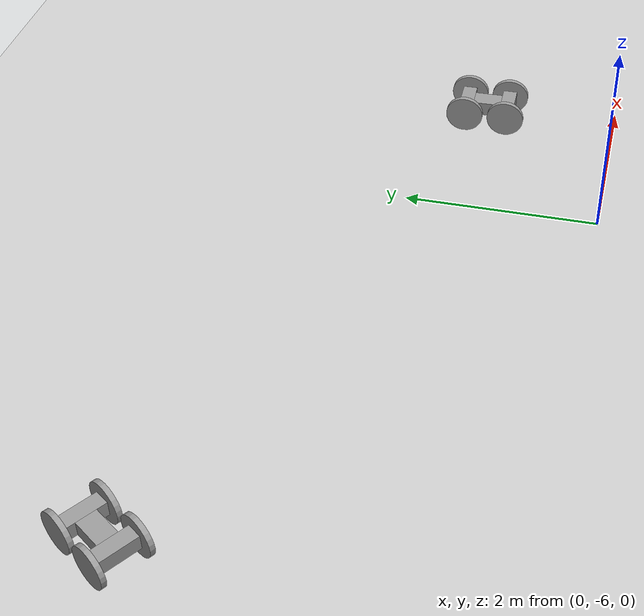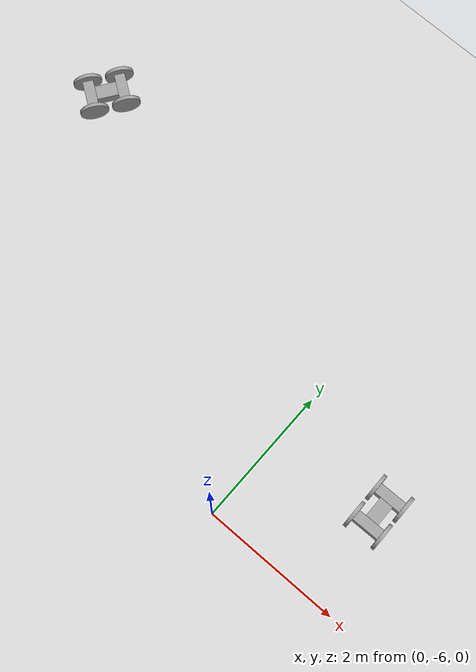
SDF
<sdf version="1.7">
 <world name="default">
  <model name="ground_plane">
   <static>1</static>
   <link name="link">
    <collision name="collision">
     <geometry><plane><normal>0 0 1</normal><size>100 100</size></plane></geometry>
     <surface>
      <contact><collide_bitmask>65535</collide_bitmask></contact>
      <friction><ode><mu>100</mu><mu2>50</mu2></ode></friction>
     </surface>
    </collision>
    <visual name="visual">
     <cast_shadows>0</cast_shadows>
     <geometry><plane><normal>0 0 1</normal><size>100 100</size></plane></geometry>
     <material>
      <script><uri>file://media/materials/scripts/gazebo.material</uri><name>Gazebo/Grey</name></script>
     </material>
    </visual>
   </link>
  </model>
  <model name="JM_robot">
   <link name="link_0_clone_0_clone">
    <inertial>
     <mass>1</mass>
     <inertia>
      <ixx>0.166667</ixx>
      <ixy>0</ixy>
      <ixz>0</ixz>
      <iyy>0.166667</iyy>
      <iyz>0</iyz>
      <izz>0.166667</izz>
     </inertia>
    </inertial>
    <visual name="visual">
     <geometry><box><size>0.2 0.3 0.15</size></box></geometry>
     <material>
      <lighting>1</lighting>
      <script><uri>file://media/materials/scripts/gazebo.material</uri><name>Gazebo/Grey</name></script>
      <shader type="pixel"><normal_map>__default__</normal_map></shader>
      <ambient>0.3 0.3 0.3 1</ambient>
      <diffuse>0.7 0.7 0.7 1</diffuse>
      <specular>0.01 0.01 0.01 1</specular>
      <emissive>0 0 0 1</emissive>
     </material>
    </visual>
    <collision name="collision">
     <geometry><box><size>0.2 0.3 0.15</size></box></geometry>
     <surface>
      <friction>
       <ode><mu>1</mu><mu2>1</mu2><fdir1>0 0 0</fdir1><slip1>0</slip1><slip2>0</slip2></ode>
       <torsional>
        <coefficient>1</coefficient>
        <patch_radius>0</patch_radius>
        <surface_radius>0</surface_radius>
        <use_patch_radius>1</use_patch_radius>
        <ode><slip>0</slip></ode>
       </torsional>
      </friction>
      <bounce><restitution_coefficient>0</restitution_coefficient><threshold>1e+06</threshold></bounce>
      <contact>
       <collide_without_contact>0</collide_without_contact>
       <collide_without_contact_bitmask>1</collide_without_contact_bitmask>
       <collide_bitmask>1</collide_bitmask>
       <ode>
        <soft_cfm>0</soft_cfm>
        <soft_erp>0.2</soft_erp>
        <kp>1e+13</kp>
        <kd>1</kd>
        <max_vel>0.01</max_vel>
        <min_depth>0</min_depth>
       </ode>
       <bullet>
        <split_impulse>1</split_impulse>
        <split_impulse_penetration_threshold>-0.01</split_impulse_penetration_threshold>
        <soft_cfm>0</soft_cfm>
        <soft_erp>0.2</soft_erp>
        <kp>1e+13</kp>
        <kd>1</kd>
       </bullet>
      </contact>
     </surface>
    </collision>
   </link>
   <link name="link_1_clone_clone_0_clone">
    <inertial>
     <mass>1</mass>
     <inertia>
      <ixx>0.166667</ixx>
      <ixy>0</ixy>
      <ixz>0</ixz>
      <iyy>0.166667</iyy>
      <iyz>0</iyz>
      <izz>0.166667</izz>
     </inertia>
     <pose>0 0 0.2 0 -0 0</pose>
    </inertial>
    <pose>0 0.225 0 0 -0 0</pose>
    <visual name="visual">
     <geometry><box><size>0.4 0.15 0.15</size></box></geometry>
     <material>
      <lighting>1</lighting>
      <script><uri>file://media/materials/scripts/gazebo.material</uri><name>Gazebo/Grey</name></script>
      <shader type="pixel"><normal_map>__default__</normal_map></shader>
      <ambient>0.3 0.3 0.3 1</ambient>
      <diffuse>0.7 0.7 0.7 1</diffuse>
      <specular>0.01 0.01 0.01 1</specular>
      <emissive>0 0 0 1</emissive>
     </material>
    </visual>
    <collision name="collision">
     <geometry><box><size>0.4 0.15 0.15</size></box></geometry>
     <surface>
      <friction>
       <ode><mu>1</mu><mu2>1</mu2><fdir1>0 0 0</fdir1><slip1>0</slip1><slip2>0</slip2></ode>
       <torsional>
        <coefficient>1</coefficient>
        <patch_radius>0</patch_radius>
        <surface_radius>0</surface_radius>
        <use_patch_radius>1</use_patch_radius>
        <ode><slip>0</slip></ode>
       </torsional>
      </friction>
      <bounce><restitution_coefficient>0</restitution_coefficient><threshold>1e+06</threshold></bounce>
      <contact>
       <collide_without_contact>0</collide_without_contact>
       <collide_without_contact_bitmask>1</collide_without_contact_bitmask>
       <collide_bitmask>1</collide_bitmask>
       <ode>
        <soft_cfm>0</soft_cfm>
        <soft_erp>0.2</soft_erp>
        <kp>1e+13</kp>
        <kd>1</kd>
        <max_vel>0.01</max_vel>
        <min_depth>0</min_depth>
       </ode>
       <bullet>
        <split_impulse>1</split_impulse>
        <split_impulse_penetration_threshold>-0.01</split_impulse_penetration_threshold>
        <soft_cfm>0</soft_cfm>
        <soft_erp>0.2</soft_erp>
        <kp>1e+13</kp>
        <kd>1</kd>
       </bullet>
      </contact>
     </surface>
    </collision>
   </link>
   <link name="link_1_clone_clone_0_clone_clone">
    <inertial>
     <mass>1</mass>
     <inertia>
      <ixx>0.166667</ixx>
      <ixy>0</ixy>
      <ixz>0</ixz>
      <iyy>0.166667</iyy>
      <iyz>0</iyz>
      <izz>0.166667</izz>
     </inertia>
     <pose>0 0 0.2 0 -0 0</pose>
    </inertial>
    <pose>0 -0.225 0 0 -0 0</pose>
    <visual name="visual">
     <geometry><box><size>0.4 0.15 0.15</size></box></geometry>
     <material>
      <lighting>1</lighting>
      <script><uri>file://media/materials/scripts/gazebo.material</uri><name>Gazebo/Grey</name></script>
      <shader type="pixel"><normal_map>__default__</normal_map></shader>
      <ambient>0.3 0.3 0.3 1</ambient>
      <diffuse>0.7 0.7 0.7 1</diffuse>
      <specular>0.01 0.01 0.01 1</specular>
      <emissive>0 0 0 1</emissive>
     </material>
    </visual>
    <collision name="collision">
     <geometry><box><size>0.4 0.15 0.15</size></box></geometry>
     <surface>
      <friction>
       <ode><mu>1</mu><mu2>1</mu2><fdir1>0 0 0</fdir1><slip1>0</slip1><slip2>0</slip2></ode>
       <torsional>
        <coefficient>1</coefficient>
        <patch_radius>0</patch_radius>
        <surface_radius>0</surface_radius>
        <use_patch_radius>1</use_patch_radius>
        <ode><slip>0</slip></ode>
       </torsional>
      </friction>
      <bounce><restitution_coefficient>0</restitution_coefficient><threshold>1e+06</threshold></bounce>
      <contact>
       <collide_without_contact>0</collide_without_contact>
       <collide_without_contact_bitmask>1</collide_without_contact_bitmask>
       <collide_bitmask>1</collide_bitmask>
       <ode>
        <soft_cfm>0</soft_cfm>
        <soft_erp>0.2</soft_erp>
        <kp>1e+13</kp>
        <kd>1</kd>
        <max_vel>0.01</max_vel>
        <min_depth>0</min_depth>
       </ode>
       <bullet>
        <split_impulse>1</split_impulse>
        <split_impulse_penetration_threshold>-0.01</split_impulse_penetration_threshold>
        <soft_cfm>0</soft_cfm>
        <soft_erp>0.2</soft_erp>
        <kp>1e+13</kp>
        <kd>1</kd>
       </bullet>
      </contact>
     </surface>
    </collision>
   </link>
   <link name="link_2_clone">
    <inertial>
     <mass>1</mass>
     <inertia><ixx>0.145833</ixx><ixy>0</ixy><ixz>0</ixz><iyy>0.145833</iyy><iyz>0</iyz><izz>0.125</izz></inertia>
    </inertial>
    <pose>-0.225039 -0.225 0 1.5707 0 1.5707</pose>
    <visual name="visual">
     <geometry><cylinder><radius>0.2</radius><length>0.05</length></cylinder></geometry>
     <material>
      <lighting>1</lighting>
      <script><uri>file://media/materials/scripts/gazebo.material</uri><name>Gazebo/Grey</name></script>
      <shader type="pixel"><normal_map>__default__</normal_map></shader>
      <ambient>0.3 0.3 0.3 1</ambient>
      <diffuse>0.7 0.7 0.7 1</diffuse>
      <specular>0.01 0.01 0.01 1</specular>
      <emissive>0 0 0 1</emissive>
     </material>
    </visual>
    <collision name="collision">
     <geometry><cylinder><radius>0.2</radius><length>0.05</length></cylinder></geometry>
     <surface>
      <friction>
       <ode><mu>1</mu><mu2>1</mu2><fdir1>0 0 0</fdir1><slip1>0</slip1><slip2>0</slip2></ode>
       <torsional>
        <coefficient>1</coefficient>
        <patch_radius>0</patch_radius>
        <surface_radius>0</surface_radius>
        <use_patch_radius>1</use_patch_radius>
        <ode><slip>0</slip></ode>
       </torsional>
      </friction>
      <bounce><restitution_coefficient>0</restitution_coefficient><threshold>1e+06</threshold></bounce>
      <contact>
       <collide_without_contact>0</collide_without_contact>
       <collide_without_contact_bitmask>1</collide_without_contact_bitmask>
       <collide_bitmask>1</collide_bitmask>
       <ode>
        <soft_cfm>0</soft_cfm>
        <soft_erp>0.2</soft_erp>
        <kp>1e+13</kp>
        <kd>1</kd>
        <max_vel>0.01</max_vel>
        <min_depth>0</min_depth>
       </ode>
       <bullet>
        <split_impulse>1</split_impulse>
        <split_impulse_penetration_threshold>-0.01</split_impulse_penetration_threshold>
        <soft_cfm>0</soft_cfm>
        <soft_erp>0.2</soft_erp>
        <kp>1e+13</kp>
        <kd>1</kd>
       </bullet>
      </contact>
     </surface>
    </collision>
   </link>
   <link name="link_2_clone_clone">
    <inertial>
     <mass>1</mass>
     <inertia><ixx>0.145833</ixx><ixy>0</ixy><ixz>0</ixz><iyy>0.145833</iyy><iyz>0</iyz><izz>0.125</izz></inertia>
    </inertial>
    <pose>0.225039 -0.225 0 1.5707 0 1.5707</pose>
    <visual name="visual">
     <geometry><cylinder><radius>0.2</radius><length>0.05</length></cylinder></geometry>
     <material>
      <lighting>1</lighting>
      <script><uri>file://media/materials/scripts/gazebo.material</uri><name>Gazebo/Grey</name></script>
      <shader type="pixel"><normal_map>__default__</normal_map></shader>
      <ambient>0.3 0.3 0.3 1</ambient>
      <diffuse>0.7 0.7 0.7 1</diffuse>
      <specular>0.01 0.01 0.01 1</specular>
      <emissive>0 0 0 1</emissive>
     </material>
    </visual>
    <collision name="collision">
     <geometry><cylinder><radius>0.2</radius><length>0.05</length></cylinder></geometry>
     <surface>
      <friction>
       <ode><mu>1</mu><mu2>1</mu2><fdir1>0 0 0</fdir1><slip1>0</slip1><slip2>0</slip2></ode>
       <torsional>
        <coefficient>1</coefficient>
        <patch_radius>0</patch_radius>
        <surface_radius>0</surface_radius>
        <use_patch_radius>1</use_patch_radius>
        <ode><slip>0</slip></ode>
       </torsional>
      </friction>
      <bounce><restitution_coefficient>0</restitution_coefficient><threshold>1e+06</threshold></bounce>
      <contact>
       <collide_without_contact>0</collide_without_contact>
       <collide_without_contact_bitmask>1</collide_without_contact_bitmask>
       <collide_bitmask>1</collide_bitmask>
       <ode>
        <soft_cfm>0</soft_cfm>
        <soft_erp>0.2</soft_erp>
        <kp>1e+13</kp>
        <kd>1</kd>
        <max_vel>0.01</max_vel>
        <min_depth>0</min_depth>
       </ode>
       <bullet>
        <split_impulse>1</split_impulse>
        <split_impulse_penetration_threshold>-0.01</split_impulse_penetration_threshold>
        <soft_cfm>0</soft_cfm>
        <soft_erp>0.2</soft_erp>
        <kp>1e+13</kp>
        <kd>1</kd>
       </bullet>
      </contact>
     </surface>
    </collision>
   </link>
   <link name="link_2_clone_clone_2">
    <inertial>
     <mass>1</mass>
     <inertia><ixx>0.145833</ixx><ixy>0</ixy><ixz>0</ixz><iyy>0.145833</iyy><iyz>0</iyz><izz>0.125</izz></inertia>
    </inertial>
    <pose>-0.225039 0.225 0 1.5707 0 1.5707</pose>
    <visual name="visual">
     <geometry><cylinder><radius>0.2</radius><length>0.05</length></cylinder></geometry>
     <material>
      <lighting>1</lighting>
      <script><uri>file://media/materials/scripts/gazebo.material</uri><name>Gazebo/Grey</name></script>
      <shader type="pixel"><normal_map>__default__</normal_map></shader>
      <ambient>0.3 0.3 0.3 1</ambient>
      <diffuse>0.7 0.7 0.7 1</diffuse>
      <specular>0.01 0.01 0.01 1</specular>
      <emissive>0 0 0 1</emissive>
     </material>
    </visual>
    <collision name="collision">
     <geometry><cylinder><radius>0.2</radius><length>0.05</length></cylinder></geometry>
     <surface>
      <friction>
       <ode><mu>1</mu><mu2>1</mu2><fdir1>0 0 0</fdir1><slip1>0</slip1><slip2>0</slip2></ode>
       <torsional>
        <coefficient>1</coefficient>
        <patch_radius>0</patch_radius>
        <surface_radius>0</surface_radius>
        <use_patch_radius>1</use_patch_radius>
        <ode><slip>0</slip></ode>
       </torsional>
      </friction>
      <bounce><restitution_coefficient>0</restitution_coefficient><threshold>1e+06</threshold></bounce>
      <contact>
       <collide_without_contact>0</collide_without_contact>
       <collide_without_contact_bitmask>1</collide_without_contact_bitmask>
       <collide_bitmask>1</collide_bitmask>
       <ode>
        <soft_cfm>0</soft_cfm>
        <soft_erp>0.2</soft_erp>
        <kp>1e+13</kp>
        <kd>1</kd>
        <max_vel>0.01</max_vel>
        <min_depth>0</min_depth>
       </ode>
       <bullet>
        <split_impulse>1</split_impulse>
        <split_impulse_penetration_threshold>-0.01</split_impulse_penetration_threshold>
        <soft_cfm>0</soft_cfm>
        <soft_erp>0.2</soft_erp>
        <kp>1e+13</kp>
        <kd>1</kd>
       </bullet>
      </contact>
     </surface>
    </collision>
   </link>
   <link name="link_2_clone_clone_clone">
    <inertial>
     <mass>1</mass>
     <inertia><ixx>0.145833</ixx><ixy>0</ixy><ixz>0</ixz><iyy>0.145833</iyy><iyz>0</iyz><izz>0.125</izz></inertia>
    </inertial>
    <pose>0.225039 0.225 0 1.5707 0 1.5707</pose>
    <visual name="visual">
     <geometry><cylinder><radius>0.2</radius><length>0.05</length></cylinder></geometry>
     <material>
      <lighting>1</lighting>
      <script><uri>file://media/materials/scripts/gazebo.material</uri><name>Gazebo/Grey</name></script>
      <shader type="pixel"><normal_map>__default__</normal_map></shader>
      <ambient>0.3 0.3 0.3 1</ambient>
      <diffuse>0.7 0.7 0.7 1</diffuse>
      <specular>0.01 0.01 0.01 1</specular>
      <emissive>0 0 0 1</emissive>
     </material>
    </visual>
    <collision name="collision">
     <geometry><cylinder><radius>0.2</radius><length>0.05</length></cylinder></geometry>
     <surface>
      <friction>
       <ode><mu>1</mu><mu2>1</mu2><fdir1>0 0 0</fdir1><slip1>0</slip1><slip2>0</slip2></ode>
       <torsional>
        <coefficient>1</coefficient>
        <patch_radius>0</patch_radius>
        <surface_radius>0</surface_radius>
        <use_patch_radius>1</use_patch_radius>
        <ode><slip>0</slip></ode>
       </torsional>
      </friction>
      <bounce><restitution_coefficient>0</restitution_coefficient><threshold>1e+06</threshold></bounce>
      <contact>
       <collide_without_contact>0</collide_without_contact>
       <collide_without_contact_bitmask>1</collide_without_contact_bitmask>
       <collide_bitmask>1</collide_bitmask>
       <ode>
        <soft_cfm>0</soft_cfm>
        <soft_erp>0.2</soft_erp>
        <kp>1e+13</kp>
        <kd>1</kd>
        <max_vel>0.01</max_vel>
        <min_depth>0</min_depth>
       </ode>
       <bullet>
        <split_impulse>1</split_impulse>
        <split_impulse_penetration_threshold>-0.01</split_impulse_penetration_threshold>
        <soft_cfm>0</soft_cfm>
        <soft_erp>0.2</soft_erp>
        <kp>1e+13</kp>
        <kd>1</kd>
       </bullet>
      </contact>
     </surface>
    </collision>
   </link>
   <joint name="link_0_clone_0_clone_JOINT_3" type="fixed">
    <parent>link_0_clone_0_clone</parent>
    <child>link_1_clone_clone_0_clone_clone</child>
    <physics>
     <ode><limit><cfm>0</cfm><erp>0.2</erp></limit><suspension><cfm>0</cfm><erp>0.2</erp></suspension></ode>
    </physics>
   </joint>
   <joint name="link_0_clone_0_clone_JOINT_4" type="fixed">
    <parent>link_0_clone_0_clone</parent>
    <child>link_1_clone_clone_0_clone</child>
    <physics>
     <ode><limit><cfm>0</cfm><erp>0.2</erp></limit><suspension><cfm>0</cfm><erp>0.2</erp></suspension></ode>
    </physics>
   </joint>
   <joint name="link_1_clone_clone_0_clone_JOINT_7" type="revolute">
    <parent>link_1_clone_clone_0_clone</parent>
    <child>link_2_clone_clone_clone</child>
    <axis>
     <xyz>0 0 1</xyz>
     <limit>
      <lower>-1.79769e+308</lower>
      <upper>1.79769e+308</upper>
      <effort>-1</effort>
      <velocity>-1</velocity>
     </limit>
     <dynamics>
      <spring_reference>0</spring_reference>
      <spring_stiffness>0</spring_stiffness>
      <damping>0</damping>
     </dynamics>
    </axis>
    <physics>
     <ode><limit><cfm>0</cfm><erp>0.2</erp></limit><suspension><cfm>0</cfm><erp>0.2</erp></suspension></ode>
    </physics>
   </joint>
   <joint name="link_1_clone_clone_0_clone_JOINT_8" type="revolute">
    <parent>link_1_clone_clone_0_clone</parent>
    <child>link_2_clone_clone_2</child>
    <axis>
     <xyz>0 0 1</xyz>
     <limit>
      <lower>-1.79769e+308</lower>
      <upper>1.79769e+308</upper>
      <effort>-1</effort>
      <velocity>-1</velocity>
     </limit>
     <dynamics>
      <spring_reference>0</spring_reference>
      <spring_stiffness>0</spring_stiffness>
      <damping>0</damping>
     </dynamics>
    </axis>
    <physics>
     <ode><limit><cfm>0</cfm><erp>0.2</erp></limit><suspension><cfm>0</cfm><erp>0.2</erp></suspension></ode>
    </physics>
   </joint>
   <joint name="link_1_clone_clone_0_clone_clone_JOINT_5" type="revolute">
    <parent>link_1_clone_clone_0_clone_clone</parent>
    <child>link_2_clone</child>
    <axis>
     <xyz>0 0 1</xyz>
     <limit>
      <lower>-1.79769e+308</lower>
      <upper>1.79769e+308</upper>
      <effort>-1</effort>
      <velocity>-1</velocity>
     </limit>
     <dynamics>
      <spring_reference>0</spring_reference>
      <spring_stiffness>0</spring_stiffness>
      <damping>0</damping>
     </dynamics>
    </axis>
    <physics>
     <ode><limit><cfm>0</cfm><erp>0.2</erp></limit><suspension><cfm>0</cfm><erp>0.2</erp></suspension></ode>
    </physics>
   </joint>
   <joint name="link_1_clone_clone_0_clone_clone_JOINT_6" type="revolute">
    <parent>link_1_clone_clone_0_clone_clone</parent>
    <child>link_2_clone_clone</child>
    <axis>
     <xyz>0 0 1</xyz>
     <limit>
      <lower>-1.79769e+308</lower>
      <upper>1.79769e+308</upper>
      <effort>-1</effort>
      <velocity>-1</velocity>
     </limit>
     <dynamics>
      <spring_reference>0</spring_reference>
      <spring_stiffness>0</spring_stiffness>
      <damping>0</damping>
     </dynamics>
    </axis>
    <physics>
     <ode><limit><cfm>0</cfm><erp>0.2</erp></limit><suspension><cfm>0</cfm><erp>0.2</erp></suspension></ode>
    </physics>
   </joint>
   <static>0</static>
   <pose>1.61268 -4.59598 0.200002 0 -0 0.014237</pose>
  </model>
  <model name="JM_robot_1">
   <link name="link_0_clone_0_clone">
    <inertial>
     <mass>1</mass>
     <inertia>
      <ixx>0.166667</ixx>
      <ixy>0</ixy>
      <ixz>0</ixz>
      <iyy>0.166667</iyy>
      <iyz>0</iyz>
      <izz>0.166667</izz>
     </inertia>
    </inertial>
    <visual name="visual">
     <geometry><box><size>0.2 0.3 0.15</size></box></geometry>
     <material>
      <lighting>1</lighting>
      <script><uri>file://media/materials/scripts/gazebo.material</uri><name>Gazebo/Grey</name></script>
      <shader type="pixel"><normal_map>__default__</normal_map></shader>
      <ambient>0.3 0.3 0.3 1</ambient>
      <diffuse>0.7 0.7 0.7 1</diffuse>
      <specular>0.01 0.01 0.01 1</specular>
      <emissive>0 0 0 1</emissive>
     </material>
    </visual>
    <collision name="collision">
     <geometry><box><size>0.2 0.3 0.15</size></box></geometry>
     <surface>
      <friction>
       <ode><mu>1</mu><mu2>1</mu2><fdir1>0 0 0</fdir1><slip1>0</slip1><slip2>0</slip2></ode>
       <torsional>
        <coefficient>1</coefficient>
        <patch_radius>0</patch_radius>
        <surface_radius>0</surface_radius>
        <use_patch_radius>1</use_patch_radius>
        <ode><slip>0</slip></ode>
       </torsional>
      </friction>
      <bounce><restitution_coefficient>0</restitution_coefficient><threshold>1e+06</threshold></bounce>
      <contact>
       <collide_without_contact>0</collide_without_contact>
       <collide_without_contact_bitmask>1</collide_without_contact_bitmask>
       <collide_bitmask>1</collide_bitmask>
       <ode>
        <soft_cfm>0</soft_cfm>
        <soft_erp>0.2</soft_erp>
        <kp>1e+13</kp>
        <kd>1</kd>
        <max_vel>0.01</max_vel>
        <min_depth>0</min_depth>
       </ode>
       <bullet>
        <split_impulse>1</split_impulse>
        <split_impulse_penetration_threshold>-0.01</split_impulse_penetration_threshold>
        <soft_cfm>0</soft_cfm>
        <soft_erp>0.2</soft_erp>
        <kp>1e+13</kp>
        <kd>1</kd>
       </bullet>
      </contact>
     </surface>
    </collision>
   </link>
   <link name="link_1_clone_clone_0_clone">
    <inertial>
     <mass>1</mass>
     <inertia>
      <ixx>0.166667</ixx>
      <ixy>0</ixy>
      <ixz>0</ixz>
      <iyy>0.166667</iyy>
      <iyz>0</iyz>
      <izz>0.166667</izz>
     </inertia>
     <pose>0 0 0.2 0 -0 0</pose>
    </inertial>
    <pose>0 0.225 0 0 -0 0</pose>
    <visual name="visual">
     <geometry><box><size>0.4 0.15 0.15</size></box></geometry>
     <material>
      <lighting>1</lighting>
      <script><uri>file://media/materials/scripts/gazebo.material</uri><name>Gazebo/Grey</name></script>
      <shader type="pixel"><normal_map>__default__</normal_map></shader>
      <ambient>0.3 0.3 0.3 1</ambient>
      <diffuse>0.7 0.7 0.7 1</diffuse>
      <specular>0.01 0.01 0.01 1</specular>
      <emissive>0 0 0 1</emissive>
     </material>
    </visual>
    <collision name="collision">
     <geometry><box><size>0.4 0.15 0.15</size></box></geometry>
     <surface>
      <friction>
       <ode><mu>1</mu><mu2>1</mu2><fdir1>0 0 0</fdir1><slip1>0</slip1><slip2>0</slip2></ode>
       <torsional>
        <coefficient>1</coefficient>
        <patch_radius>0</patch_radius>
        <surface_radius>0</surface_radius>
        <use_patch_radius>1</use_patch_radius>
        <ode><slip>0</slip></ode>
       </torsional>
      </friction>
      <bounce><restitution_coefficient>0</restitution_coefficient><threshold>1e+06</threshold></bounce>
      <contact>
       <collide_without_contact>0</collide_without_contact>
       <collide_without_contact_bitmask>1</collide_without_contact_bitmask>
       <collide_bitmask>1</collide_bitmask>
       <ode>
        <soft_cfm>0</soft_cfm>
        <soft_erp>0.2</soft_erp>
        <kp>1e+13</kp>
        <kd>1</kd>
        <max_vel>0.01</max_vel>
        <min_depth>0</min_depth>
       </ode>
       <bullet>
        <split_impulse>1</split_impulse>
        <split_impulse_penetration_threshold>-0.01</split_impulse_penetration_threshold>
        <soft_cfm>0</soft_cfm>
        <soft_erp>0.2</soft_erp>
        <kp>1e+13</kp>
        <kd>1</kd>
       </bullet>
      </contact>
     </surface>
    </collision>
   </link>
   <link name="link_1_clone_clone_0_clone_clone">
    <inertial>
     <mass>1</mass>
     <inertia>
      <ixx>0.166667</ixx>
      <ixy>0</ixy>
      <ixz>0</ixz>
      <iyy>0.166667</iyy>
      <iyz>0</iyz>
      <izz>0.166667</izz>
     </inertia>
     <pose>0 0 0.2 0 -0 0</pose>
    </inertial>
    <pose>0 -0.225 0 0 -0 0</pose>
    <visual name="visual">
     <geometry><box><size>0.4 0.15 0.15</size></box></geometry>
     <material>
      <lighting>1</lighting>
      <script><uri>file://media/materials/scripts/gazebo.material</uri><name>Gazebo/Grey</name></script>
      <shader type="pixel"><normal_map>__default__</normal_map></shader>
      <ambient>0.3 0.3 0.3 1</ambient>
      <diffuse>0.7 0.7 0.7 1</diffuse>
      <specular>0.01 0.01 0.01 1</specular>
      <emissive>0 0 0 1</emissive>
     </material>
    </visual>
    <collision name="collision">
     <geometry><box><size>0.4 0.15 0.15</size></box></geometry>
     <surface>
      <friction>
       <ode><mu>1</mu><mu2>1</mu2><fdir1>0 0 0</fdir1><slip1>0</slip1><slip2>0</slip2></ode>
       <torsional>
        <coefficient>1</coefficient>
        <patch_radius>0</patch_radius>
        <surface_radius>0</surface_radius>
        <use_patch_radius>1</use_patch_radius>
        <ode><slip>0</slip></ode>
       </torsional>
      </friction>
      <bounce><restitution_coefficient>0</restitution_coefficient><threshold>1e+06</threshold></bounce>
      <contact>
       <collide_without_contact>0</collide_without_contact>
       <collide_without_contact_bitmask>1</collide_without_contact_bitmask>
       <collide_bitmask>1</collide_bitmask>
       <ode>
        <soft_cfm>0</soft_cfm>
        <soft_erp>0.2</soft_erp>
        <kp>1e+13</kp>
        <kd>1</kd>
        <max_vel>0.01</max_vel>
        <min_depth>0</min_depth>
       </ode>
       <bullet>
        <split_impulse>1</split_impulse>
        <split_impulse_penetration_threshold>-0.01</split_impulse_penetration_threshold>
        <soft_cfm>0</soft_cfm>
        <soft_erp>0.2</soft_erp>
        <kp>1e+13</kp>
        <kd>1</kd>
       </bullet>
      </contact>
     </surface>
    </collision>
   </link>
   <link name="link_2_clone">
    <inertial>
     <mass>1</mass>
     <inertia><ixx>0.145833</ixx><ixy>0</ixy><ixz>0</ixz><iyy>0.145833</iyy><iyz>0</iyz><izz>0.125</izz></inertia>
    </inertial>
    <pose>-0.225039 -0.225 0 1.5707 0 1.5707</pose>
    <visual name="visual">
     <geometry><cylinder><radius>0.2</radius><length>0.05</length></cylinder></geometry>
     <material>
      <lighting>1</lighting>
      <script><uri>file://media/materials/scripts/gazebo.material</uri><name>Gazebo/Grey</name></script>
      <shader type="pixel"><normal_map>__default__</normal_map></shader>
      <ambient>0.3 0.3 0.3 1</ambient>
      <diffuse>0.7 0.7 0.7 1</diffuse>
      <specular>0.01 0.01 0.01 1</specular>
      <emissive>0 0 0 1</emissive>
     </material>
    </visual>
    <collision name="collision">
     <geometry><cylinder><radius>0.2</radius><length>0.05</length></cylinder></geometry>
     <surface>
      <friction>
       <ode><mu>1</mu><mu2>1</mu2><fdir1>0 0 0</fdir1><slip1>0</slip1><slip2>0</slip2></ode>
       <torsional>
        <coefficient>1</coefficient>
        <patch_radius>0</patch_radius>
        <surface_radius>0</surface_radius>
        <use_patch_radius>1</use_patch_radius>
        <ode><slip>0</slip></ode>
       </torsional>
      </friction>
      <bounce><restitution_coefficient>0</restitution_coefficient><threshold>1e+06</threshold></bounce>
      <contact>
       <collide_without_contact>0</collide_without_contact>
       <collide_without_contact_bitmask>1</collide_without_contact_bitmask>
       <collide_bitmask>1</collide_bitmask>
       <ode>
        <soft_cfm>0</soft_cfm>
        <soft_erp>0.2</soft_erp>
        <kp>1e+13</kp>
        <kd>1</kd>
        <max_vel>0.01</max_vel>
        <min_depth>0</min_depth>
       </ode>
       <bullet>
        <split_impulse>1</split_impulse>
        <split_impulse_penetration_threshold>-0.01</split_impulse_penetration_threshold>
        <soft_cfm>0</soft_cfm>
        <soft_erp>0.2</soft_erp>
        <kp>1e+13</kp>
        <kd>1</kd>
       </bullet>
      </contact>
     </surface>
    </collision>
   </link>
   <link name="link_2_clone_clone">
    <inertial>
     <mass>1</mass>
     <inertia><ixx>0.145833</ixx><ixy>0</ixy><ixz>0</ixz><iyy>0.145833</iyy><iyz>0</iyz><izz>0.125</izz></inertia>
    </inertial>
    <pose>0.225039 -0.225 0 1.5707 0 1.5707</pose>
    <visual name="visual">
     <geometry><cylinder><radius>0.2</radius><length>0.05</length></cylinder></geometry>
     <material>
      <lighting>1</lighting>
      <script><uri>file://media/materials/scripts/gazebo.material</uri><name>Gazebo/Grey</name></script>
      <shader type="pixel"><normal_map>__default__</normal_map></shader>
      <ambient>0.3 0.3 0.3 1</ambient>
      <diffuse>0.7 0.7 0.7 1</diffuse>
      <specular>0.01 0.01 0.01 1</specular>
      <emissive>0 0 0 1</emissive>
     </material>
    </visual>
    <collision name="collision">
     <geometry><cylinder><radius>0.2</radius><length>0.05</length></cylinder></geometry>
     <surface>
      <friction>
       <ode><mu>1</mu><mu2>1</mu2><fdir1>0 0 0</fdir1><slip1>0</slip1><slip2>0</slip2></ode>
       <torsional>
        <coefficient>1</coefficient>
        <patch_radius>0</patch_radius>
        <surface_radius>0</surface_radius>
        <use_patch_radius>1</use_patch_radius>
        <ode><slip>0</slip></ode>
       </torsional>
      </friction>
      <bounce><restitution_coefficient>0</restitution_coefficient><threshold>1e+06</threshold></bounce>
      <contact>
       <collide_without_contact>0</collide_without_contact>
       <collide_without_contact_bitmask>1</collide_without_contact_bitmask>
       <collide_bitmask>1</collide_bitmask>
       <ode>
        <soft_cfm>0</soft_cfm>
        <soft_erp>0.2</soft_erp>
        <kp>1e+13</kp>
        <kd>1</kd>
        <max_vel>0.01</max_vel>
        <min_depth>0</min_depth>
       </ode>
       <bullet>
        <split_impulse>1</split_impulse>
        <split_impulse_penetration_threshold>-0.01</split_impulse_penetration_threshold>
        <soft_cfm>0</soft_cfm>
        <soft_erp>0.2</soft_erp>
        <kp>1e+13</kp>
        <kd>1</kd>
       </bullet>
      </contact>
     </surface>
    </collision>
   </link>
   <link name="link_2_clone_clone_2">
    <inertial>
     <mass>1</mass>
     <inertia><ixx>0.145833</ixx><ixy>0</ixy><ixz>0</ixz><iyy>0.145833</iyy><iyz>0</iyz><izz>0.125</izz></inertia>
    </inertial>
    <pose>-0.225039 0.225 0 1.5707 0 1.5707</pose>
    <visual name="visual">
     <geometry><cylinder><radius>0.2</radius><length>0.05</length></cylinder></geometry>
     <material>
      <lighting>1</lighting>
      <script><uri>file://media/materials/scripts/gazebo.material</uri><name>Gazebo/Grey</name></script>
      <shader type="pixel"><normal_map>__default__</normal_map></shader>
      <ambient>0.3 0.3 0.3 1</ambient>
      <diffuse>0.7 0.7 0.7 1</diffuse>
      <specular>0.01 0.01 0.01 1</specular>
      <emissive>0 0 0 1</emissive>
     </material>
    </visual>
    <collision name="collision">
     <geometry><cylinder><radius>0.2</radius><length>0.05</length></cylinder></geometry>
     <surface>
      <friction>
       <ode><mu>1</mu><mu2>1</mu2><fdir1>0 0 0</fdir1><slip1>0</slip1><slip2>0</slip2></ode>
       <torsional>
        <coefficient>1</coefficient>
        <patch_radius>0</patch_radius>
        <surface_radius>0</surface_radius>
        <use_patch_radius>1</use_patch_radius>
        <ode><slip>0</slip></ode>
       </torsional>
      </friction>
      <bounce><restitution_coefficient>0</restitution_coefficient><threshold>1e+06</threshold></bounce>
      <contact>
       <collide_without_contact>0</collide_without_contact>
       <collide_without_contact_bitmask>1</collide_without_contact_bitmask>
       <collide_bitmask>1</collide_bitmask>
       <ode>
        <soft_cfm>0</soft_cfm>
        <soft_erp>0.2</soft_erp>
        <kp>1e+13</kp>
        <kd>1</kd>
        <max_vel>0.01</max_vel>
        <min_depth>0</min_depth>
       </ode>
       <bullet>
        <split_impulse>1</split_impulse>
        <split_impulse_penetration_threshold>-0.01</split_impulse_penetration_threshold>
        <soft_cfm>0</soft_cfm>
        <soft_erp>0.2</soft_erp>
        <kp>1e+13</kp>
        <kd>1</kd>
       </bullet>
      </contact>
     </surface>
    </collision>
   </link>
   <link name="link_2_clone_clone_clone">
    <inertial>
     <mass>1</mass>
     <inertia><ixx>0.145833</ixx><ixy>0</ixy><ixz>0</ixz><iyy>0.145833</iyy><iyz>0</iyz><izz>0.125</izz></inertia>
    </inertial>
    <pose>0.225039 0.225 0 1.5707 0 1.5707</pose>
    <visual name="visual">
     <geometry><cylinder><radius>0.2</radius><length>0.05</length></cylinder></geometry>
     <material>
      <lighting>1</lighting>
      <script><uri>file://media/materials/scripts/gazebo.material</uri><name>Gazebo/Grey</name></script>
      <shader type="pixel"><normal_map>__default__</normal_map></shader>
      <ambient>0.3 0.3 0.3 1</ambient>
      <diffuse>0.7 0.7 0.7 1</diffuse>
      <specular>0.01 0.01 0.01 1</specular>
      <emissive>0 0 0 1</emissive>
     </material>
    </visual>
    <collision name="collision">
     <geometry><cylinder><radius>0.2</radius><length>0.05</length></cylinder></geometry>
     <surface>
      <friction>
       <ode><mu>1</mu><mu2>1</mu2><fdir1>0 0 0</fdir1><slip1>0</slip1><slip2>0</slip2></ode>
       <torsional>
        <coefficient>1</coefficient>
        <patch_radius>0</patch_radius>
        <surface_radius>0</surface_radius>
        <use_patch_radius>1</use_patch_radius>
        <ode><slip>0</slip></ode>
       </torsional>
      </friction>
      <bounce><restitution_coefficient>0</restitution_coefficient><threshold>1e+06</threshold></bounce>
      <contact>
       <collide_without_contact>0</collide_without_contact>
       <collide_without_contact_bitmask>1</collide_without_contact_bitmask>
       <collide_bitmask>1</collide_bitmask>
       <ode>
        <soft_cfm>0</soft_cfm>
        <soft_erp>0.2</soft_erp>
        <kp>1e+13</kp>
        <kd>1</kd>
        <max_vel>0.01</max_vel>
        <min_depth>0</min_depth>
       </ode>
       <bullet>
        <split_impulse>1</split_impulse>
        <split_impulse_penetration_threshold>-0.01</split_impulse_penetration_threshold>
        <soft_cfm>0</soft_cfm>
        <soft_erp>0.2</soft_erp>
        <kp>1e+13</kp>
        <kd>1</kd>
       </bullet>
      </contact>
     </surface>
    </collision>
   </link>
   <joint name="link_0_clone_0_clone_JOINT_3" type="fixed">
    <parent>link_0_clone_0_clone</parent>
    <child>link_1_clone_clone_0_clone_clone</child>
    <physics>
     <ode><limit><cfm>0</cfm><erp>0.2</erp></limit><suspension><cfm>0</cfm><erp>0.2</erp></suspension></ode>
    </physics>
   </joint>
   <joint name="link_0_clone_0_clone_JOINT_4" type="fixed">
    <parent>link_0_clone_0_clone</parent>
    <child>link_1_clone_clone_0_clone</child>
    <physics>
     <ode><limit><cfm>0</cfm><erp>0.2</erp></limit><suspension><cfm>0</cfm><erp>0.2</erp></suspension></ode>
    </physics>
   </joint>
   <joint name="link_1_clone_clone_0_clone_JOINT_7" type="revolute">
    <parent>link_1_clone_clone_0_clone</parent>
    <child>link_2_clone_clone_clone</child>
    <axis>
     <xyz>0 0 1</xyz>
     <limit>
      <lower>-1.79769e+308</lower>
      <upper>1.79769e+308</upper>
      <effort>-1</effort>
      <velocity>-1</velocity>
     </limit>
     <dynamics>
      <spring_reference>0</spring_reference>
      <spring_stiffness>0</spring_stiffness>
      <damping>0</damping>
     </dynamics>
    </axis>
    <physics>
     <ode><limit><cfm>0</cfm><erp>0.2</erp></limit><suspension><cfm>0</cfm><erp>0.2</erp></suspension></ode>
    </physics>
   </joint>
   <joint name="link_1_clone_clone_0_clone_JOINT_8" type="revolute">
    <parent>link_1_clone_clone_0_clone</parent>
    <child>link_2_clone_clone_2</child>
    <axis>
     <xyz>0 0 1</xyz>
     <limit>
      <lower>-1.79769e+308</lower>
      <upper>1.79769e+308</upper>
      <effort>-1</effort>
      <velocity>-1</velocity>
     </limit>
     <dynamics>
      <spring_reference>0</spring_reference>
      <spring_stiffness>0</spring_stiffness>
      <damping>0</damping>
     </dynamics>
    </axis>
    <physics>
     <ode><limit><cfm>0</cfm><erp>0.2</erp></limit><suspension><cfm>0</cfm><erp>0.2</erp></suspension></ode>
    </physics>
   </joint>
   <joint name="link_1_clone_clone_0_clone_clone_JOINT_5" type="revolute">
    <parent>link_1_clone_clone_0_clone_clone</parent>
    <child>link_2_clone</child>
    <axis>
     <xyz>0 0 1</xyz>
     <limit>
      <lower>-1.79769e+308</lower>
      <upper>1.79769e+308</upper>
      <effort>-1</effort>
      <velocity>-1</velocity>
     </limit>
     <dynamics>
      <spring_reference>0</spring_reference>
      <spring_stiffness>0</spring_stiffness>
      <damping>0</damping>
     </dynamics>
    </axis>
    <physics>
     <ode><limit><cfm>0</cfm><erp>0.2</erp></limit><suspension><cfm>0</cfm><erp>0.2</erp></suspension></ode>
    </physics>
   </joint>
   <joint name="link_1_clone_clone_0_clone_clone_JOINT_6" type="revolute">
    <parent>link_1_clone_clone_0_clone_clone</parent>
    <child>link_2_clone_clone</child>
    <axis>
     <xyz>0 0 1</xyz>
     <limit>
      <lower>-1.79769e+308</lower>
      <upper>1.79769e+308</upper>
      <effort>-1</effort>
      <velocity>-1</velocity>
     </limit>
     <dynamics>
      <spring_reference>0</spring_reference>
      <spring_stiffness>0</spring_stiffness>
      <damping>0</damping>
     </dynamics>
    </axis>
    <physics>
     <ode><limit><cfm>0</cfm><erp>0.2</erp></limit><suspension><cfm>0</cfm><erp>0.2</erp></suspension></ode>
    </physics>
   </joint>
   <static>0</static>
   <pose>-4.96792 -2.57357 0.200002 -1e-06 -0 -0.612874</pose>
  </model>
 </world>
</sdf>
